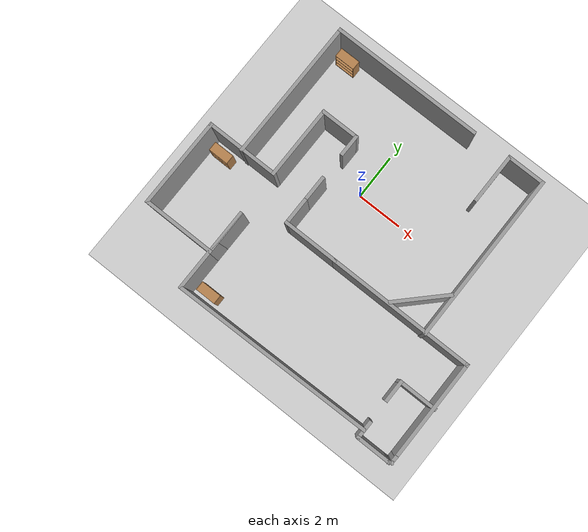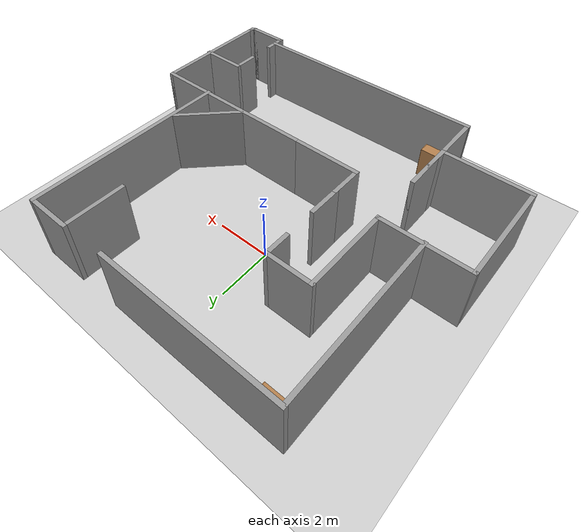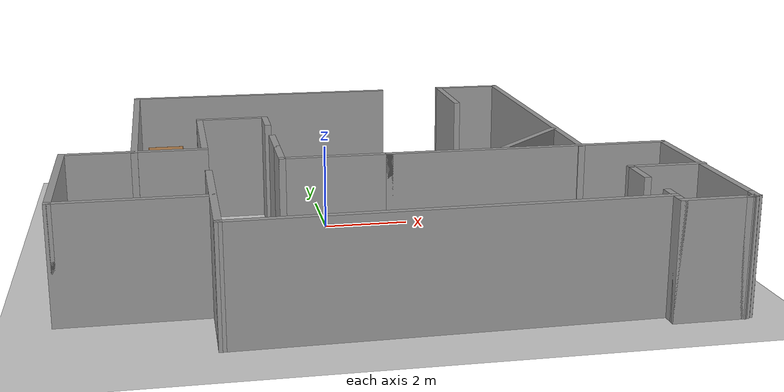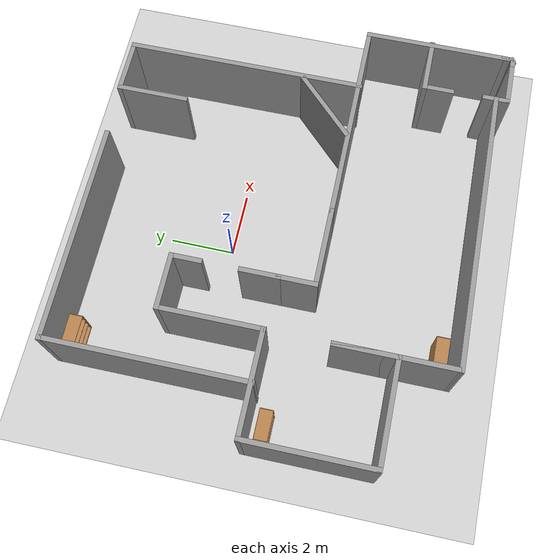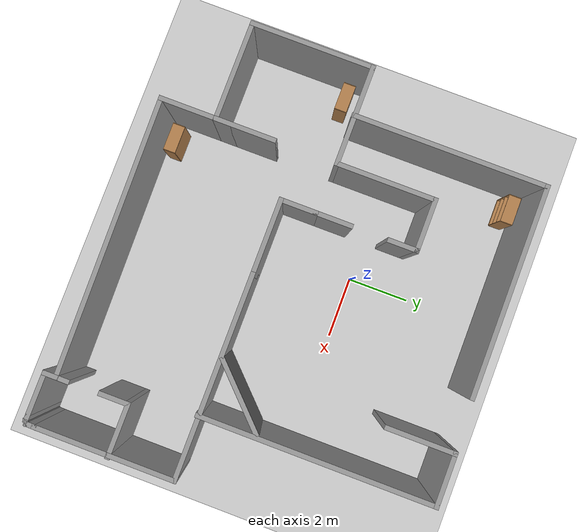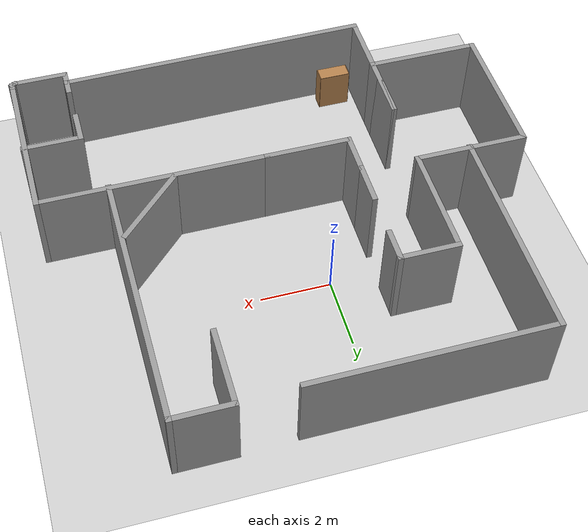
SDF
<sdf version="1.6">
 <world name="default">
  <light name="sun" type="directional">
   <pose>0 0 10 0 -0 0</pose>
   <diffuse>0.8 0.8 0.8 1</diffuse>
   <specular>0.2 0.2 0.2 1</specular>
   <attenuation>
    <range>1000</range>
    <constant>0.9</constant>
    <linear>0.01</linear>
    <quadratic>0.001</quadratic>
   </attenuation>
   <direction>-0.5 0.1 -0.9</direction>
  </light>
  <model name="ground_plane">
   <static>1</static>
   <link name="link">
    <collision name="collision">
     <geometry><plane><normal>0 0 1</normal><size>100 100</size></plane></geometry>
     <surface>
      <contact><collide_bitmask>65535</collide_bitmask></contact>
      <friction><ode><mu>100</mu><mu2>50</mu2></ode></friction>
     </surface>
    </collision>
    <visual name="visual">
     <cast_shadows>0</cast_shadows>
     <geometry><plane><normal>0 0 1</normal><size>100 100</size></plane></geometry>
     <material>
      <script><uri>file://media/materials/scripts/gazebo.material</uri><name>Gazebo/Grey</name></script>
     </material>
    </visual>
   </link>
  </model>
  <gravity>0 0 -9.8</gravity>
  <magnetic_field>6e-06 2.3e-05 -4.2e-05</magnetic_field>
  <atmosphere type="adiabatic"/>
  <physics name="default_physics" default="0" type="ode">
   <max_step_size>0.001</max_step_size>
   <real_time_factor>1</real_time_factor>
   <real_time_update_rate>1000</real_time_update_rate>
  </physics>
  <scene><ambient>0.4 0.4 0.4 1</ambient><background>0.7 0.7 0.7 1</background><shadows>1</shadows></scene>
  <audio><device>default</device></audio>
  <spherical_coordinates>
   <surface_model>EARTH_WGS84</surface_model>
   <latitude_deg>0</latitude_deg>
   <longitude_deg>0</longitude_deg>
   <elevation>0</elevation>
   <heading_deg>0</heading_deg>
  </spherical_coordinates>
  <model name="Roomtest">
   <pose>0.692821 -1.59296 0 0 -0 0</pose>
   <link name="Wall_0">
    <collision name="Wall_0_Collision">
     <geometry><box><size>1.25 0.15 2.5</size></box></geometry>
     <pose>0 0 1.25 0 -0 0</pose>
    </collision>
    <visual name="Wall_0_Visual">
     <pose>0 0 1.25 0 -0 0</pose>
     <geometry><box><size>1.25 0.15 2.5</size></box></geometry>
     <material>
      <script><uri>file://media/materials/scripts/gazebo.material</uri><name>Gazebo/Grey</name></script>
      <ambient>1 1 1 1</ambient>
     </material>
     <meta><layer>0</layer></meta>
    </visual>
    <pose>-2.02119 0.328708 0 0 -0 -1.5708</pose>
   </link>
   <link name="Wall_10">
    <collision name="Wall_10_Collision">
     <geometry><box><size>2 0.15 2.5</size></box></geometry>
     <pose>0 0 1.25 0 -0 0</pose>
    </collision>
    <visual name="Wall_10_Visual">
     <pose>0 0 1.25 0 -0 0</pose>
     <geometry><box><size>2 0.15 2.5</size></box></geometry>
     <material>
      <script><uri>file://media/materials/scripts/gazebo.material</uri><name>Gazebo/Grey</name></script>
      <ambient>1 1 1 1</ambient>
     </material>
     <meta><layer>0</layer></meta>
    </visual>
    <pose>-3.61969 -3.07079 0 0 -0 1.5708</pose>
   </link>
   <link name="Wall_11">
    <collision name="Wall_11_Collision">
     <geometry><box><size>3.75 0.15 2.5</size></box></geometry>
     <pose>0 0 1.25 0 -0 0</pose>
    </collision>
    <visual name="Wall_11_Visual">
     <pose>0 0 1.25 0 -0 0</pose>
     <geometry><box><size>3.75 0.15 2.5</size></box></geometry>
     <material>
      <script><uri>file://media/materials/scripts/gazebo.material</uri><name>Gazebo/Grey</name></script>
      <ambient>1 1 1 1</ambient>
     </material>
     <meta><layer>0</layer></meta>
    </visual>
    <pose>-3.61969 -3.94579 0 0 -0 -1.5708</pose>
   </link>
   <link name="Wall_13">
    <collision name="Wall_13_Collision">
     <geometry><box><size>1.25 0.15 2.5</size></box></geometry>
     <pose>0 0 1.25 0 -0 0</pose>
    </collision>
    <visual name="Wall_13_Visual">
     <pose>0 0 1.25 0 -0 0</pose>
     <geometry><box><size>1.25 0.15 2.5</size></box></geometry>
     <material>
      <script><uri>file://media/materials/scripts/gazebo.material</uri><name>Gazebo/Grey</name></script>
      <ambient>1 1 1 1</ambient>
     </material>
     <meta><layer>0</layer></meta>
    </visual>
    <pose>-2.02119 -0.771292 0 0 -0 -1.5708</pose>
   </link>
   <link name="Wall_14">
    <collision name="Wall_14_Collision">
     <geometry><box><size>2.5 0.15 2.5</size></box></geometry>
     <pose>0 0 1.25 0 -0 0</pose>
    </collision>
    <visual name="Wall_14_Visual">
     <pose>0 0 1.25 0 -0 0</pose>
     <geometry><box><size>2.5 0.15 2.5</size></box></geometry>
     <material>
      <script><uri>file://media/materials/scripts/gazebo.material</uri><name>Gazebo/Grey</name></script>
      <ambient>1 1 1 1</ambient>
     </material>
     <meta><layer>0</layer></meta>
    </visual>
    <pose>-0.84619 -1.32129 0 0 -0 0</pose>
   </link>
   <link name="Wall_15">
    <collision name="Wall_15_Collision">
     <geometry><box><size>6.5 0.15 2.5</size></box></geometry>
     <pose>0 0 1.25 0 -0 0</pose>
    </collision>
    <visual name="Wall_15_Visual">
     <pose>0 0 1.25 0 -0 0</pose>
     <geometry><box><size>6.5 0.15 2.5</size></box></geometry>
     <material>
      <script><uri>file://media/materials/scripts/gazebo.material</uri><name>Gazebo/Grey</name></script>
      <ambient>1 1 1 1</ambient>
     </material>
     <meta><layer>0</layer></meta>
    </visual>
    <pose>3.50381 -1.32129 0 0 -0 0</pose>
   </link>
   <link name="Wall_16">
    <collision name="Wall_16_Collision">
     <geometry><box><size>4.5 0.15 2.5</size></box></geometry>
     <pose>0 0 1.25 0 -0 0</pose>
    </collision>
    <visual name="Wall_16_Visual">
     <pose>0 0 1.25 0 -0 0</pose>
     <geometry><box><size>4.5 0.15 2.5</size></box></geometry>
     <material>
      <script><uri>file://media/materials/scripts/gazebo.material</uri><name>Gazebo/Grey</name></script>
      <ambient>1 1 1 1</ambient>
     </material>
     <meta><layer>0</layer></meta>
    </visual>
    <pose>6.67881 -3.49629 0 0 -0 -1.5708</pose>
   </link>
   <link name="Wall_18">
    <collision name="Wall_18_Collision">
     <geometry><box><size>1.75 0.15 2.5</size></box></geometry>
     <pose>0 0 1.25 0 -0 0</pose>
    </collision>
    <visual name="Wall_18_Visual">
     <pose>0 0 1.25 0 -0 0</pose>
     <geometry><box><size>1.75 0.15 2.5</size></box></geometry>
     <material>
      <script><uri>file://media/materials/scripts/gazebo.material</uri><name>Gazebo/Grey</name></script>
      <ambient>1 1 1 1</ambient>
     </material>
     <meta><layer>0</layer></meta>
    </visual>
    <pose>5.91969 -3.36404 0 0 -0 3.14159</pose>
   </link>
   <link name="Wall_19">
    <collision name="Wall_19_Collision">
     <geometry><box><size>1 0.15 2.5</size></box></geometry>
     <pose>0 0 1.25 0 -0 0</pose>
    </collision>
    <visual name="Wall_19_Visual">
     <pose>0 0 1.25 0 -0 0</pose>
     <geometry><box><size>1 0.15 2.5</size></box></geometry>
     <material>
      <script><uri>file://media/materials/scripts/gazebo.material</uri><name>Gazebo/Grey</name></script>
      <ambient>1 1 1 1</ambient>
     </material>
     <meta><layer>0</layer></meta>
    </visual>
    <pose>5.11969 -3.78904 0 0 -0 -1.5708</pose>
   </link>
   <link name="Wall_21">
    <collision name="Wall_21_Collision">
     <geometry><box><size>0.5 0.15 2.5</size></box></geometry>
     <pose>0 0 1.25 0 -0 0</pose>
    </collision>
    <visual name="Wall_21_Visual">
     <pose>0 0 1.25 0 -0 0</pose>
     <geometry><box><size>0.5 0.15 2.5</size></box></geometry>
     <material>
      <script><uri>file://media/materials/scripts/gazebo.material</uri><name>Gazebo/Grey</name></script>
      <ambient>1 1 1 1</ambient>
     </material>
     <meta><layer>0</layer></meta>
    </visual>
    <pose>5.13665 -5.4387 0 0 -0 -1.5708</pose>
   </link>
   <link name="Wall_22">
    <collision name="Wall_22_Collision">
     <geometry><box><size>0.15 0.15 2.5</size></box></geometry>
     <pose>0 0 1.25 0 -0 0</pose>
    </collision>
    <visual name="Wall_22_Visual">
     <pose>0 0 1.25 0 -0 0</pose>
     <geometry><box><size>0.15 0.15 2.5</size></box></geometry>
     <material>
      <script><uri>file://media/materials/scripts/gazebo.material</uri><name>Gazebo/Grey</name></script>
      <ambient>1 1 1 1</ambient>
     </material>
     <meta><layer>0</layer></meta>
    </visual>
    <pose>5.13665 -5.6137 0 0 -0 0</pose>
   </link>
   <link name="Wall_23">
    <collision name="Wall_23_Collision">
     <geometry><box><size>0.15 0.15 2.5</size></box></geometry>
     <pose>0 0 1.25 0 -0 0</pose>
    </collision>
    <visual name="Wall_23_Visual">
     <pose>0 0 1.25 0 -0 0</pose>
     <geometry><box><size>0.15 0.15 2.5</size></box></geometry>
     <material>
      <script><uri>file://media/materials/scripts/gazebo.material</uri><name>Gazebo/Grey</name></script>
      <ambient>1 1 1 1</ambient>
     </material>
     <meta><layer>0</layer></meta>
    </visual>
    <pose>5.13665 -5.6137 0 0 -0 0</pose>
   </link>
   <link name="Wall_24">
    <collision name="Wall_24_Collision">
     <geometry><box><size>0.5 0.15 2.5</size></box></geometry>
     <pose>0 0 1.25 0 -0 0</pose>
    </collision>
    <visual name="Wall_24_Visual">
     <pose>0 0 1.25 0 -0 0</pose>
     <geometry><box><size>0.5 0.15 2.5</size></box></geometry>
     <material>
      <script><uri>file://media/materials/scripts/gazebo.material</uri><name>Gazebo/Grey</name></script>
      <ambient>1 1 1 1</ambient>
     </material>
     <meta><layer>0</layer></meta>
    </visual>
    <pose>5.13665 -5.7887 0 0 -0 -1.5708</pose>
   </link>
   <link name="Wall_25">
    <collision name="Wall_25_Collision">
     <geometry><box><size>1.5 0.15 2.5</size></box></geometry>
     <pose>0 0 1.25 0 -0 0</pose>
    </collision>
    <visual name="Wall_25_Visual">
     <pose>0 0 1.25 0 -0 0</pose>
     <geometry><box><size>1.5 0.15 2.5</size></box></geometry>
     <material>
      <script><uri>file://media/materials/scripts/gazebo.material</uri><name>Gazebo/Grey</name></script>
      <ambient>1 1 1 1</ambient>
     </material>
     <meta><layer>0</layer></meta>
    </visual>
    <pose>5.81165 -5.9637 0 0 -0 0</pose>
   </link>
   <link name="Wall_26">
    <collision name="Wall_26_Collision">
     <geometry><box><size>0.25 0.15 2.5</size></box></geometry>
     <pose>0 0 1.25 0 -0 0</pose>
    </collision>
    <visual name="Wall_26_Visual">
     <pose>0 0 1.25 0 -0 0</pose>
     <geometry><box><size>0.25 0.15 2.5</size></box></geometry>
     <material>
      <script><uri>file://media/materials/scripts/gazebo.material</uri><name>Gazebo/Grey</name></script>
      <ambient>1 1 1 1</ambient>
     </material>
     <meta><layer>0</layer></meta>
    </visual>
    <pose>6.53665 -5.9637 0 0 -0 0</pose>
   </link>
   <link name="Wall_27">
    <collision name="Wall_27_Collision">
     <geometry><box><size>0.25 0.15 2.5</size></box></geometry>
     <pose>0 0 1.25 0 -0 0</pose>
    </collision>
    <visual name="Wall_27_Visual">
     <pose>0 0 1.25 0 -0 0</pose>
     <geometry><box><size>0.25 0.15 2.5</size></box></geometry>
     <material>
      <script><uri>file://media/materials/scripts/gazebo.material</uri><name>Gazebo/Grey</name></script>
      <ambient>1 1 1 1</ambient>
     </material>
     <meta><layer>0</layer></meta>
    </visual>
    <pose>6.62995 -5.9387 0 0 -0 0.523599</pose>
   </link>
   <link name="Wall_28">
    <collision name="Wall_28_Collision">
     <geometry><box><size>0.392468 0.15 2.5</size></box></geometry>
     <pose>0 0 1.25 0 -0 0</pose>
    </collision>
    <visual name="Wall_28_Visual">
     <pose>0 0 1.25 0 -0 0</pose>
     <geometry><box><size>0.392468 0.15 2.5</size></box></geometry>
     <material>
      <script><uri>file://media/materials/scripts/gazebo.material</uri><name>Gazebo/Grey</name></script>
      <ambient>1 1 1 1</ambient>
     </material>
     <meta><layer>0</layer></meta>
    </visual>
    <pose>6.67603 -5.79249 0 0 -0 1.54786</pose>
   </link>
   <link name="Wall_3">
    <collision name="Wall_3_Collision">
     <geometry><box><size>1 0.15 2.5</size></box></geometry>
     <pose>0 0 1.25 0 -0 0</pose>
    </collision>
    <visual name="Wall_3_Visual">
     <pose>0 0 1.25 0 -0 0</pose>
     <geometry><box><size>1 0.15 2.5</size></box></geometry>
     <material>
      <script><uri>file://media/materials/scripts/gazebo.material</uri><name>Gazebo/Grey</name></script>
      <ambient>1 1 1 1</ambient>
     </material>
     <meta><layer>0</layer></meta>
    </visual>
    <pose>-2.01969 2.52921 0 0 -0 1.5708</pose>
   </link>
   <link name="Wall_30">
    <collision name="Wall_30_Collision">
     <geometry><box><size>8.90733 0.15 2.5</size></box></geometry>
     <pose>0 0 1.25 0 -0 0</pose>
    </collision>
    <visual name="Wall_30_Visual">
     <pose>0 0 1.25 0 -0 0</pose>
     <geometry><box><size>8.90733 0.15 2.5</size></box></geometry>
     <material>
      <script><uri>file://media/materials/scripts/gazebo.material</uri><name>Gazebo/Grey</name></script>
      <ambient>1 1 1 1</ambient>
     </material>
     <meta><layer>0</layer></meta>
    </visual>
    <pose>0.758478 -5.67974 0 0 -0 0.015085</pose>
   </link>
   <link name="Wall_32">
    <collision name="Wall_32_Collision">
     <geometry><box><size>7.5 0.15 2.5</size></box></geometry>
     <pose>0 0 1.25 0 -0 0</pose>
    </collision>
    <visual name="Wall_32_Visual">
     <pose>0 0 1.25 0 -0 0</pose>
     <geometry><box><size>7.5 0.15 2.5</size></box></geometry>
     <material>
      <script><uri>file://media/materials/scripts/gazebo.material</uri><name>Gazebo/Grey</name></script>
      <ambient>1 1 1 1</ambient>
     </material>
     <meta><layer>0</layer></meta>
    </visual>
    <pose>4.7145 2.31615 0 0 -0 1.5708</pose>
   </link>
   <link name="Wall_33">
    <collision name="Wall_33_Collision">
     <geometry><box><size>1.75 0.15 2.5</size></box></geometry>
     <pose>0 0 1.25 0 -0 0</pose>
    </collision>
    <visual name="Wall_33_Visual">
     <pose>0 0 1.25 0 -0 0</pose>
     <geometry><box><size>1.75 0.15 2.5</size></box></geometry>
     <material>
      <script><uri>file://media/materials/scripts/gazebo.material</uri><name>Gazebo/Grey</name></script>
      <ambient>1 1 1 1</ambient>
     </material>
     <meta><layer>0</layer></meta>
    </visual>
    <pose>3.9145 5.99115 0 0 -0 3.14159</pose>
   </link>
   <link name="Wall_34">
    <collision name="Wall_34_Collision">
     <geometry><box><size>2.25 0.15 2.5</size></box></geometry>
     <pose>0 0 1.25 0 -0 0</pose>
    </collision>
    <visual name="Wall_34_Visual">
     <pose>0 0 1.25 0 -0 0</pose>
     <geometry><box><size>2.25 0.15 2.5</size></box></geometry>
     <material>
      <script><uri>file://media/materials/scripts/gazebo.material</uri><name>Gazebo/Grey</name></script>
      <ambient>1 1 1 1</ambient>
     </material>
     <meta><layer>0</layer></meta>
    </visual>
    <pose>3.1145 4.94115 0 0 -0 -1.5708</pose>
   </link>
   <link name="Wall_36">
    <collision name="Wall_36_Collision">
     <geometry><box><size>6.75 0.15 2.5</size></box></geometry>
     <pose>0 0 1.25 0 -0 0</pose>
    </collision>
    <visual name="Wall_36_Visual">
     <pose>0 0 1.25 0 -0 0</pose>
     <geometry><box><size>6.75 0.15 2.5</size></box></geometry>
     <material>
      <script><uri>file://media/materials/scripts/gazebo.material</uri><name>Gazebo/Grey</name></script>
      <ambient>1 1 1 1</ambient>
     </material>
     <meta><layer>0</layer></meta>
    </visual>
    <pose>-1.85712 5.92315 0 0 -0 3.14159</pose>
   </link>
   <link name="Wall_37">
    <collision name="Wall_37_Collision">
     <geometry><box><size>6.25 0.15 2.5</size></box></geometry>
     <pose>0 0 1.25 0 -0 0</pose>
    </collision>
    <visual name="Wall_37_Visual">
     <pose>0 0 1.25 0 -0 0</pose>
     <geometry><box><size>6.25 0.15 2.5</size></box></geometry>
     <material>
      <script><uri>file://media/materials/scripts/gazebo.material</uri><name>Gazebo/Grey</name></script>
      <ambient>1 1 1 1</ambient>
     </material>
     <meta><layer>0</layer></meta>
    </visual>
    <pose>-5.15712 2.87315 0 0 -0 -1.5708</pose>
   </link>
   <link name="Wall_39">
    <collision name="Wall_39_Collision">
     <geometry><box><size>2.5 0.15 2.5</size></box></geometry>
     <pose>0 0 1.25 0 -0 0</pose>
    </collision>
    <visual name="Wall_39_Visual">
     <pose>0 0 1.25 0 -0 0</pose>
     <geometry><box><size>2.5 0.15 2.5</size></box></geometry>
     <material>
      <script><uri>file://media/materials/scripts/gazebo.material</uri><name>Gazebo/Grey</name></script>
      <ambient>1 1 1 1</ambient>
     </material>
     <meta><layer>0</layer></meta>
    </visual>
    <pose>3.78641 -0.422466 0 0 -0 0.785398</pose>
   </link>
   <link name="Wall_4">
    <collision name="Wall_4_Collision">
     <geometry><box><size>1.75 0.15 2.5</size></box></geometry>
     <pose>0 0 1.25 0 -0 0</pose>
    </collision>
    <visual name="Wall_4_Visual">
     <pose>0 0 1.25 0 -0 0</pose>
     <geometry><box><size>1.75 0.15 2.5</size></box></geometry>
     <material>
      <script><uri>file://media/materials/scripts/gazebo.material</uri><name>Gazebo/Grey</name></script>
      <ambient>1 1 1 1</ambient>
     </material>
     <meta><layer>0</layer></meta>
    </visual>
    <pose>-2.81969 2.95421 0 0 -0 3.14159</pose>
   </link>
   <link name="Wall_5">
    <collision name="Wall_5_Collision">
     <geometry><box><size>3.25 0.15 2.5</size></box></geometry>
     <pose>0 0 1.25 0 -0 0</pose>
    </collision>
    <visual name="Wall_5_Visual">
     <pose>0 0 1.25 0 -0 0</pose>
     <geometry><box><size>3.25 0.15 2.5</size></box></geometry>
     <material>
      <script><uri>file://media/materials/scripts/gazebo.material</uri><name>Gazebo/Grey</name></script>
      <ambient>1 1 1 1</ambient>
     </material>
     <meta><layer>0</layer></meta>
    </visual>
    <pose>-3.61969 1.40421 0 0 -0 -1.5708</pose>
   </link>
   <link name="Wall_7">
    <collision name="Wall_7_Collision">
     <geometry><box><size>3.25 0.15 2.5</size></box></geometry>
     <pose>0 0 1.25 0 -0 0</pose>
    </collision>
    <visual name="Wall_7_Visual">
     <pose>0 0 1.25 0 -0 0</pose>
     <geometry><box><size>3.25 0.15 2.5</size></box></geometry>
     <material>
      <script><uri>file://media/materials/scripts/gazebo.material</uri><name>Gazebo/Grey</name></script>
      <ambient>1 1 1 1</ambient>
     </material>
     <meta><layer>0</layer></meta>
    </visual>
    <pose>-5.16969 -0.145792 0 0 -0 3.14159</pose>
   </link>
   <link name="Wall_8">
    <collision name="Wall_8_Collision">
     <geometry><box><size>4 0.15 2.5</size></box></geometry>
     <pose>0 0 1.25 0 -0 0</pose>
    </collision>
    <visual name="Wall_8_Visual">
     <pose>0 0 1.25 0 -0 0</pose>
     <geometry><box><size>4 0.15 2.5</size></box></geometry>
     <material>
      <script><uri>file://media/materials/scripts/gazebo.material</uri><name>Gazebo/Grey</name></script>
      <ambient>1 1 1 1</ambient>
     </material>
     <meta><layer>0</layer></meta>
    </visual>
    <pose>-6.71969 -2.07079 0 0 -0 -1.5708</pose>
   </link>
   <link name="Wall_9">
    <collision name="Wall_9_Collision">
     <geometry><box><size>3.25 0.15 2.5</size></box></geometry>
     <pose>0 0 1.25 0 -0 0</pose>
    </collision>
    <visual name="Wall_9_Visual">
     <pose>0 0 1.25 0 -0 0</pose>
     <geometry><box><size>3.25 0.15 2.5</size></box></geometry>
     <material>
      <script><uri>file://media/materials/scripts/gazebo.material</uri><name>Gazebo/Grey</name></script>
      <ambient>1 1 1 1</ambient>
     </material>
     <meta><layer>0</layer></meta>
    </visual>
    <pose>-5.16969 -3.99579 0 0 -0 0</pose>
   </link>
   <static>1</static>
  </model>
  <model name="bookshelf">
   <static>1</static>
   <link name="link">
    <inertial><mass>1</mass></inertial>
    <collision name="back">
     <pose>0 0.005 0.6 0 -0 0</pose>
     <geometry><box><size>0.9 0.01 1.2</size></box></geometry>
    </collision>
    <visual name="visual1">
     <pose>0 0.005 0.6 0 -0 0</pose>
     <geometry><box><size>0.9 0.01 1.2</size></box></geometry>
     <material>
      <script><uri>file://media/materials/scripts/gazebo.material</uri><name>Gazebo/Wood</name></script>
     </material>
    </visual>
    <collision name="left_side">
     <pose>0.45 -0.195 0.6 0 -0 0</pose>
     <geometry><box><size>0.02 0.4 1.2</size></box></geometry>
    </collision>
    <visual name="visual2">
     <pose>0.45 -0.195 0.6 0 -0 0</pose>
     <geometry><box><size>0.02 0.4 1.2</size></box></geometry>
     <material>
      <script><uri>file://media/materials/scripts/gazebo.material</uri><name>Gazebo/Wood</name></script>
     </material>
    </visual>
    <collision name="right_side">
     <pose>-0.45 -0.195 0.6 0 -0 0</pose>
     <geometry><box><size>0.02 0.4 1.2</size></box></geometry>
    </collision>
    <visual name="visual3">
     <pose>-0.45 -0.195 0.6 0 -0 0</pose>
     <geometry><box><size>0.02 0.4 1.2</size></box></geometry>
     <material>
      <script><uri>file://media/materials/scripts/gazebo.material</uri><name>Gazebo/Wood</name></script>
     </material>
    </visual>
    <collision name="bottom">
     <pose>0 -0.195 0.03 0 -0 0</pose>
     <geometry><box><size>0.88 0.4 0.06</size></box></geometry>
    </collision>
    <visual name="visual4">
     <pose>0 -0.195 0.03 0 -0 0</pose>
     <geometry><box><size>0.88 0.4 0.06</size></box></geometry>
     <material>
      <script><uri>file://media/materials/scripts/gazebo.material</uri><name>Gazebo/Wood</name></script>
     </material>
    </visual>
    <collision name="top">
     <pose>0 -0.195 1.19 0 -0 0</pose>
     <geometry><box><size>0.88 0.4 0.02</size></box></geometry>
    </collision>
    <visual name="visual5">
     <pose>0 -0.195 1.19 0 -0 0</pose>
     <geometry><box><size>0.88 0.4 0.02</size></box></geometry>
     <material>
      <script><uri>file://media/materials/scripts/gazebo.material</uri><name>Gazebo/Wood</name></script>
     </material>
    </visual>
    <collision name="low_shelf">
     <pose>0 -0.195 0.43 0 -0 0</pose>
     <geometry><box><size>0.88 0.4 0.02</size></box></geometry>
    </collision>
    <visual name="visual6">
     <pose>0 -0.195 0.43 0 -0 0</pose>
     <geometry><box><size>0.88 0.4 0.02</size></box></geometry>
     <material>
      <script><uri>file://media/materials/scripts/gazebo.material</uri><name>Gazebo/Wood</name></script>
     </material>
    </visual>
    <collision name="high_shelf">
     <pose>0 -0.195 0.8 0 -0 0</pose>
     <geometry><box><size>0.88 0.4 0.02</size></box></geometry>
    </collision>
    <visual name="visual7">
     <pose>0 -0.195 0.8 0 -0 0</pose>
     <geometry><box><size>0.88 0.4 0.02</size></box></geometry>
     <material>
      <script><uri>file://media/materials/scripts/gazebo.material</uri><name>Gazebo/Wood</name></script>
     </material>
    </visual>
   </link>
   <pose>-3.7715 4.10617 0 0 -0 0</pose>
  </model>
  <model name="bookshelf_0">
   <static>1</static>
   <link name="link">
    <inertial><mass>1</mass></inertial>
    <collision name="back">
     <pose>0 0.005 0.6 0 -0 0</pose>
     <geometry><box><size>0.9 0.01 1.2</size></box></geometry>
    </collision>
    <visual name="visual1">
     <pose>0 0.005 0.6 0 -0 0</pose>
     <geometry><box><size>0.9 0.01 1.2</size></box></geometry>
     <material>
      <script><uri>file://media/materials/scripts/gazebo.material</uri><name>Gazebo/Wood</name></script>
     </material>
    </visual>
    <collision name="left_side">
     <pose>0.45 -0.195 0.6 0 -0 0</pose>
     <geometry><box><size>0.02 0.4 1.2</size></box></geometry>
    </collision>
    <visual name="visual2">
     <pose>0.45 -0.195 0.6 0 -0 0</pose>
     <geometry><box><size>0.02 0.4 1.2</size></box></geometry>
     <material>
      <script><uri>file://media/materials/scripts/gazebo.material</uri><name>Gazebo/Wood</name></script>
     </material>
    </visual>
    <collision name="right_side">
     <pose>-0.45 -0.195 0.6 0 -0 0</pose>
     <geometry><box><size>0.02 0.4 1.2</size></box></geometry>
    </collision>
    <visual name="visual3">
     <pose>-0.45 -0.195 0.6 0 -0 0</pose>
     <geometry><box><size>0.02 0.4 1.2</size></box></geometry>
     <material>
      <script><uri>file://media/materials/scripts/gazebo.material</uri><name>Gazebo/Wood</name></script>
     </material>
    </visual>
    <collision name="bottom">
     <pose>0 -0.195 0.03 0 -0 0</pose>
     <geometry><box><size>0.88 0.4 0.06</size></box></geometry>
    </collision>
    <visual name="visual4">
     <pose>0 -0.195 0.03 0 -0 0</pose>
     <geometry><box><size>0.88 0.4 0.06</size></box></geometry>
     <material>
      <script><uri>file://media/materials/scripts/gazebo.material</uri><name>Gazebo/Wood</name></script>
     </material>
    </visual>
    <collision name="top">
     <pose>0 -0.195 1.19 0 -0 0</pose>
     <geometry><box><size>0.88 0.4 0.02</size></box></geometry>
    </collision>
    <visual name="visual5">
     <pose>0 -0.195 1.19 0 -0 0</pose>
     <geometry><box><size>0.88 0.4 0.02</size></box></geometry>
     <material>
      <script><uri>file://media/materials/scripts/gazebo.material</uri><name>Gazebo/Wood</name></script>
     </material>
    </visual>
    <collision name="low_shelf">
     <pose>0 -0.195 0.43 0 -0 0</pose>
     <geometry><box><size>0.88 0.4 0.02</size></box></geometry>
    </collision>
    <visual name="visual6">
     <pose>0 -0.195 0.43 0 -0 0</pose>
     <geometry><box><size>0.88 0.4 0.02</size></box></geometry>
     <material>
      <script><uri>file://media/materials/scripts/gazebo.material</uri><name>Gazebo/Wood</name></script>
     </material>
    </visual>
    <collision name="high_shelf">
     <pose>0 -0.195 0.8 0 -0 0</pose>
     <geometry><box><size>0.88 0.4 0.02</size></box></geometry>
    </collision>
    <visual name="visual7">
     <pose>0 -0.195 0.8 0 -0 0</pose>
     <geometry><box><size>0.88 0.4 0.02</size></box></geometry>
     <material>
      <script><uri>file://media/materials/scripts/gazebo.material</uri><name>Gazebo/Wood</name></script>
     </material>
    </visual>
   </link>
   <pose>-2.17537 -6.68057 0 0 -0 0</pose>
  </model>
  <model name="bookshelf_1">
   <static>1</static>
   <link name="link">
    <inertial><mass>1</mass></inertial>
    <collision name="back">
     <pose>0 0.005 0.6 0 -0 0</pose>
     <geometry><box><size>0.9 0.01 1.2</size></box></geometry>
    </collision>
    <visual name="visual1">
     <pose>0 0.005 0.6 0 -0 0</pose>
     <geometry><box><size>0.9 0.01 1.2</size></box></geometry>
     <material>
      <script><uri>file://media/materials/scripts/gazebo.material</uri><name>Gazebo/Wood</name></script>
     </material>
    </visual>
    <collision name="left_side">
     <pose>0.45 -0.195 0.6 0 -0 0</pose>
     <geometry><box><size>0.02 0.4 1.2</size></box></geometry>
    </collision>
    <visual name="visual2">
     <pose>0.45 -0.195 0.6 0 -0 0</pose>
     <geometry><box><size>0.02 0.4 1.2</size></box></geometry>
     <material>
      <script><uri>file://media/materials/scripts/gazebo.material</uri><name>Gazebo/Wood</name></script>
     </material>
    </visual>
    <collision name="right_side">
     <pose>-0.45 -0.195 0.6 0 -0 0</pose>
     <geometry><box><size>0.02 0.4 1.2</size></box></geometry>
    </collision>
    <visual name="visual3">
     <pose>-0.45 -0.195 0.6 0 -0 0</pose>
     <geometry><box><size>0.02 0.4 1.2</size></box></geometry>
     <material>
      <script><uri>file://media/materials/scripts/gazebo.material</uri><name>Gazebo/Wood</name></script>
     </material>
    </visual>
    <collision name="bottom">
     <pose>0 -0.195 0.03 0 -0 0</pose>
     <geometry><box><size>0.88 0.4 0.06</size></box></geometry>
    </collision>
    <visual name="visual4">
     <pose>0 -0.195 0.03 0 -0 0</pose>
     <geometry><box><size>0.88 0.4 0.06</size></box></geometry>
     <material>
      <script><uri>file://media/materials/scripts/gazebo.material</uri><name>Gazebo/Wood</name></script>
     </material>
    </visual>
    <collision name="top">
     <pose>0 -0.195 1.19 0 -0 0</pose>
     <geometry><box><size>0.88 0.4 0.02</size></box></geometry>
    </collision>
    <visual name="visual5">
     <pose>0 -0.195 1.19 0 -0 0</pose>
     <geometry><box><size>0.88 0.4 0.02</size></box></geometry>
     <material>
      <script><uri>file://media/materials/scripts/gazebo.material</uri><name>Gazebo/Wood</name></script>
     </material>
    </visual>
    <collision name="low_shelf">
     <pose>0 -0.195 0.43 0 -0 0</pose>
     <geometry><box><size>0.88 0.4 0.02</size></box></geometry>
    </collision>
    <visual name="visual6">
     <pose>0 -0.195 0.43 0 -0 0</pose>
     <geometry><box><size>0.88 0.4 0.02</size></box></geometry>
     <material>
      <script><uri>file://media/materials/scripts/gazebo.material</uri><name>Gazebo/Wood</name></script>
     </material>
    </visual>
    <collision name="high_shelf">
     <pose>0 -0.195 0.8 0 -0 0</pose>
     <geometry><box><size>0.88 0.4 0.02</size></box></geometry>
    </collision>
    <visual name="visual7">
     <pose>0 -0.195 0.8 0 -0 0</pose>
     <geometry><box><size>0.88 0.4 0.02</size></box></geometry>
     <material>
      <script><uri>file://media/materials/scripts/gazebo.material</uri><name>Gazebo/Wood</name></script>
     </material>
    </visual>
   </link>
   <pose>-5.31614 -2.04665 0 0 -0 0</pose>
  </model>
 </world>
</sdf>
